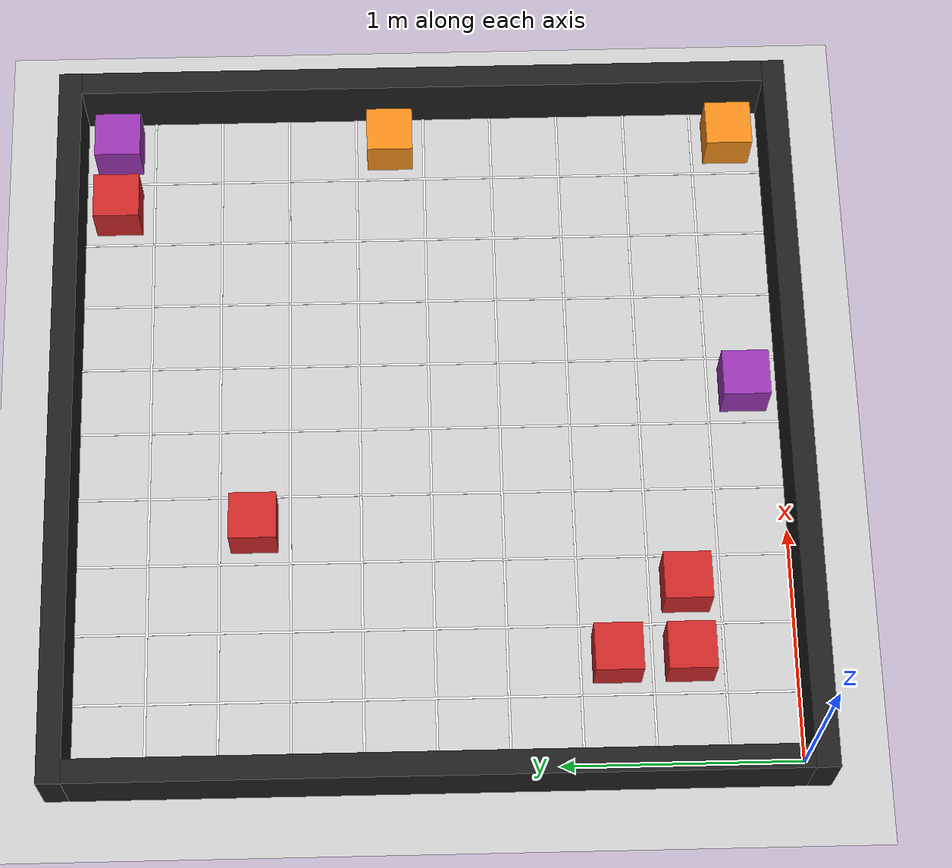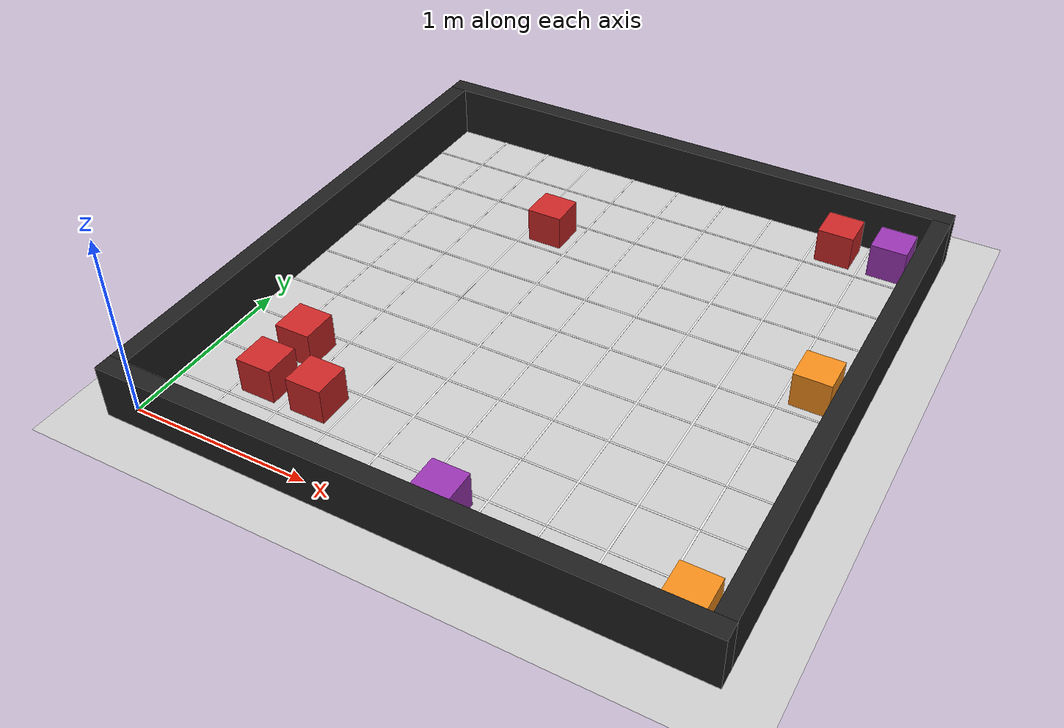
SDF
<?xml version="1.0" ?>
<sdf version="1.5">
  <world name="dynamic_path_planning_world">
    <include>
      <uri>model://sun</uri>
    </include>

    <include>
      <uri>model://ground_plane</uri>
    </include>

    <physics type="ode">
      <real_time_update_rate>1000.0</real_time_update_rate>
      <max_step_size>0.001</max_step_size>
    </physics>

    <model name="boundary_walls">
      <static>true</static>
      <link name="wall_bottom"><pose>1.5 -0.05 0.15 0 0 0</pose><collision name="collision"><geometry><box><size>3.2 0.1 0.3</size></box></geometry></collision><visual name="visual"><geometry><box><size>3.2 0.1 0.3</size></box></geometry><material><script><uri>file://media/materials/scripts/gazebo.material</uri><name>Gazebo/Black</name></script></material></visual></link>
      <link name="wall_top"><pose>1.5 3.05 0.15 0 0 0</pose><collision name="collision"><geometry><box><size>3.2 0.1 0.3</size></box></geometry></collision><visual name="visual"><geometry><box><size>3.2 0.1 0.3</size></box></geometry><material><script><uri>file://media/materials/scripts/gazebo.material</uri><name>Gazebo/Black</name></script></material></visual></link>
      <link name="wall_left"><pose>-0.05 1.5 0.15 0 0 0</pose><collision name="collision"><geometry><box><size>0.1 3.0 0.3</size></box></geometry></collision><visual name="visual"><geometry><box><size>0.1 3.0 0.3</size></box></geometry><material><script><uri>file://media/materials/scripts/gazebo.material</uri><name>Gazebo/Black</name></script></material></visual></link>
      <link name="wall_right"><pose>3.05 1.5 0.15 0 0 0</pose><collision name="collision"><geometry><box><size>0.1 3.0 0.3</size></box></geometry></collision><visual name="visual"><geometry><box><size>0.1 3.0 0.3</size></box></geometry><material><script><uri>file://media/materials/scripts/gazebo.material</uri><name>Gazebo/Black</name></script></material></visual></link>
    </model>

    <model name="visual_grid">
      <static>true</static>
      <link name="line_v1"><pose>0.3 1.5 0.002 0 0 0</pose><visual name="v"><geometry><box><size>0.01 3.0 0.001</size></box></geometry><material><script><uri>file://media/materials/scripts/gazebo.material</uri><name>Gazebo/White</name></script></material></visual></link>
      <link name="line_v2"><pose>0.6 1.5 0.002 0 0 0</pose><visual name="v"><geometry><box><size>0.01 3.0 0.001</size></box></geometry><material><script><uri>file://media/materials/scripts/gazebo.material</uri><name>Gazebo/White</name></script></material></visual></link>
      <link name="line_v3"><pose>0.9 1.5 0.002 0 0 0</pose><visual name="v"><geometry><box><size>0.01 3.0 0.001</size></box></geometry><material><script><uri>file://media/materials/scripts/gazebo.material</uri><name>Gazebo/White</name></script></material></visual></link>
      <link name="line_v4"><pose>1.2 1.5 0.002 0 0 0</pose><visual name="v"><geometry><box><size>0.01 3.0 0.001</size></box></geometry><material><script><uri>file://media/materials/scripts/gazebo.material</uri><name>Gazebo/White</name></script></material></visual></link>
      <link name="line_v5"><pose>1.5 1.5 0.002 0 0 0</pose><visual name="v"><geometry><box><size>0.01 3.0 0.001</size></box></geometry><material><script><uri>file://media/materials/scripts/gazebo.material</uri><name>Gazebo/White</name></script></material></visual></link>
      <link name="line_v6"><pose>1.8 1.5 0.002 0 0 0</pose><visual name="v"><geometry><box><size>0.01 3.0 0.001</size></box></geometry><material><script><uri>file://media/materials/scripts/gazebo.material</uri><name>Gazebo/White</name></script></material></visual></link>
      <link name="line_v7"><pose>2.1 1.5 0.002 0 0 0</pose><visual name="v"><geometry><box><size>0.01 3.0 0.001</size></box></geometry><material><script><uri>file://media/materials/scripts/gazebo.material</uri><name>Gazebo/White</name></script></material></visual></link>
      <link name="line_v8"><pose>2.4 1.5 0.002 0 0 0</pose><visual name="v"><geometry><box><size>0.01 3.0 0.001</size></box></geometry><material><script><uri>file://media/materials/scripts/gazebo.material</uri><name>Gazebo/White</name></script></material></visual></link>
      <link name="line_v9"><pose>2.7 1.5 0.002 0 0 0</pose><visual name="v"><geometry><box><size>0.01 3.0 0.001</size></box></geometry><material><script><uri>file://media/materials/scripts/gazebo.material</uri><name>Gazebo/White</name></script></material></visual></link>

      <link name="line_h1"><pose>1.5 0.3 0.002 0 0 0</pose><visual name="v"><geometry><box><size>3.0 0.01 0.001</size></box></geometry><material><script><uri>file://media/materials/scripts/gazebo.material</uri><name>Gazebo/White</name></script></material></visual></link>
      <link name="line_h2"><pose>1.5 0.6 0.002 0 0 0</pose><visual name="v"><geometry><box><size>3.0 0.01 0.001</size></box></geometry><material><script><uri>file://media/materials/scripts/gazebo.material</uri><name>Gazebo/White</name></script></material></visual></link>
      <link name="line_h3"><pose>1.5 0.9 0.002 0 0 0</pose><visual name="v"><geometry><box><size>3.0 0.01 0.001</size></box></geometry><material><script><uri>file://media/materials/scripts/gazebo.material</uri><name>Gazebo/White</name></script></material></visual></link>
      <link name="line_h4"><pose>1.5 1.2 0.002 0 0 0</pose><visual name="v"><geometry><box><size>3.0 0.01 0.001</size></box></geometry><material><script><uri>file://media/materials/scripts/gazebo.material</uri><name>Gazebo/White</name></script></material></visual></link>
      <link name="line_h5"><pose>1.5 1.5 0.002 0 0 0</pose><visual name="v"><geometry><box><size>3.0 0.01 0.001</size></box></geometry><material><script><uri>file://media/materials/scripts/gazebo.material</uri><name>Gazebo/White</name></script></material></visual></link>
      <link name="line_h6"><pose>1.5 1.8 0.002 0 0 0</pose><visual name="v"><geometry><box><size>3.0 0.01 0.001</size></box></geometry><material><script><uri>file://media/materials/scripts/gazebo.material</uri><name>Gazebo/White</name></script></material></visual></link>
      <link name="line_h7"><pose>1.5 2.1 0.002 0 0 0</pose><visual name="v"><geometry><box><size>3.0 0.01 0.001</size></box></geometry><material><script><uri>file://media/materials/scripts/gazebo.material</uri><name>Gazebo/White</name></script></material></visual></link>
      <link name="line_h8"><pose>1.5 2.4 0.002 0 0 0</pose><visual name="v"><geometry><box><size>3.0 0.01 0.001</size></box></geometry><material><script><uri>file://media/materials/scripts/gazebo.material</uri><name>Gazebo/White</name></script></material></visual></link>
      <link name="line_h9"><pose>1.5 2.7 0.002 0 0 0</pose><visual name="v"><geometry><box><size>3.0 0.01 0.001</size></box></geometry><material><script><uri>file://media/materials/scripts/gazebo.material</uri><name>Gazebo/White</name></script></material></visual></link>
    </model>

    <model name="static_red_1_1">
      <static>true</static><pose>0.45 0.45 0.1 0 0 0</pose>
      <link name="link"><collision name="col"><geometry><box><size>0.2 0.2 0.2</size></box></geometry></collision><visual name="vis"><geometry><box><size>0.2 0.2 0.2</size></box></geometry><material><script><uri>file://media/materials/scripts/gazebo.material</uri><name>Gazebo/Red</name></script></material></visual></link>
    </model>

    <model name="static_red_1_2">
      <static>true</static><pose>0.45 0.75 0.1 0 0 0</pose>
      <link name="link"><collision name="col"><geometry><box><size>0.2 0.2 0.2</size></box></geometry></collision><visual name="vis"><geometry><box><size>0.2 0.2 0.2</size></box></geometry><material><script><uri>file://media/materials/scripts/gazebo.material</uri><name>Gazebo/Red</name></script></material></visual></link>
    </model>

    <model name="static_red_2_1">
      <static>true</static><pose>0.75 0.45 0.1 0 0 0</pose>
      <link name="link"><collision name="col"><geometry><box><size>0.2 0.2 0.2</size></box></geometry></collision><visual name="vis"><geometry><box><size>0.2 0.2 0.2</size></box></geometry><material><script><uri>file://media/materials/scripts/gazebo.material</uri><name>Gazebo/Red</name></script></material></visual></link>
    </model>

    <model name="static_red_3_7">
      <static>true</static><pose>1.05 2.25 0.1 0 0 0</pose>
      <link name="link"><collision name="col"><geometry><box><size>0.2 0.2 0.2</size></box></geometry></collision><visual name="vis"><geometry><box><size>0.2 0.2 0.2</size></box></geometry><material><script><uri>file://media/materials/scripts/gazebo.material</uri><name>Gazebo/Red</name></script></material></visual></link>
    </model>

    <model name="static_red_8_9">
      <static>true</static><pose>2.55 2.85 0.1 0 0 0</pose>
      <link name="link"><collision name="col"><geometry><box><size>0.2 0.2 0.2</size></box></geometry></collision><visual name="vis"><geometry><box><size>0.2 0.2 0.2</size></box></geometry><material><script><uri>file://media/materials/scripts/gazebo.material</uri><name>Gazebo/Red</name></script></material></visual></link>
    </model>

    <model name="dynamic_orange">
      <static>false</static>
      <link name="link"><gravity>0</gravity><pose>2.85 0.15 0.1 0 0 0</pose>
      <collision name="col"><geometry><box><size>0.2 0.2 0.2</size></box></geometry></collision><visual name="vis"><geometry><box><size>0.2 0.2 0.2</size></box></geometry><material><script><uri>file://media/materials/scripts/gazebo.material</uri><name>Gazebo/Orange</name></script></material></visual></link>
    </model>

    <model name="dynamic_purple">
      <static>false</static>
      <link name="link"><gravity>0</gravity><pose>2.85 2.85 0.1 0 0 0</pose>
      <collision name="col"><geometry><box><size>0.2 0.2 0.2</size></box></geometry></collision><visual name="vis"><geometry><box><size>0.2 0.2 0.2</size></box></geometry><material><script><uri>file://media/materials/scripts/gazebo.material</uri><name>Gazebo/Purple</name></script></material></visual></link>
    </model>

    <model name="dynamic_blue">
      <static>false</static>
      <link name="link"><gravity>0</gravity><pose>1.65 0.15 0.1 0 0 0</pose>
      <collision name="col"><geometry><box><size>0.2 0.2 0.2</size></box></geometry></collision><visual name="vis"><geometry><box><size>0.2 0.2 0.2</size></box></geometry><material><script><uri>file://media/materials/scripts/gazebo.material</uri><name>Gazebo/Purple</name></script></material></visual></link>
    </model>

    <model name="dynamic_green">
      <static>false</static>
      <link name="link"><gravity>0</gravity><pose>2.85 1.65 0.1 0 0 0</pose>
      <collision name="col"><geometry><box><size>0.2 0.2 0.2</size></box></geometry></collision><visual name="vis"><geometry><box><size>0.2 0.2 0.2</size></box></geometry><material><script><uri>file://media/materials/scripts/gazebo.material</uri><name>Gazebo/Orange</name></script></material></visual></link>
    </model>
  </world>
</sdf>
